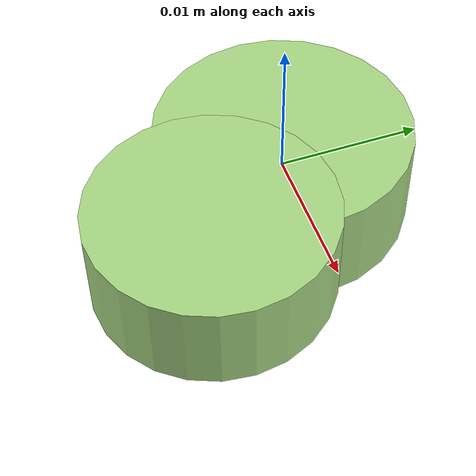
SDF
<?xml version="1.0" ?>
<!-- |    This document was autogenerated by xmacro from data/veggie_template/veggie_base.sdf.xacro  | -->
<!-- |    EDITING THIS FILE BY HAND IS NOT RECOMMENDED                                               | -->
<sdf version="1.8">
	<!-- Parameters -->
	<!-- Base -->
	<!-- Joint 0 -->
	<!-- Link 1 -->
	<!-- Joint 1 -->
	<!-- Link 2 -->
	<!-- Primitives -->
	<!-- All dimensions are half -->
	<!-- Object -->
	<model name="veggie">
		<!-- link0 -->
		<link name="link0">
			<inertial>
				<mass>0.0017097248459841078</mass>
				<inertia>
					<ixx>3.995658869500087e-08</ixx>
					<ixy>0</ixy>
					<ixz>0</ixz>
					<iyy>3.995658869500087e-08</iyy>
					<iyz>0</iyz>
					<izz>6.556633778071588e-08</izz>
				</inertia>
			</inertial>
			<visual name="link0_visual">
				<pose>0 0 0 0 0 0</pose>
				<geometry>
					<cylinder>
						<radius>0.008757746090323999</radius>
						<length>0.0070956246744241815</length>
					</cylinder>
				</geometry>
				<material>
					<ambient>0.659 0.839 0.514 1</ambient>
					<diffuse>0.659 0.839 0.514 1</diffuse>
					<specular>0 0 0 0</specular>
					<emissive>0 0 0 1</emissive>
				</material>
			</visual>
			<collision name="link0_collision">
				<pose>0 0 0 0 0 0 </pose>
				<geometry>
					<cylinder>
						<radius>0.008757746090323999</radius>
						<length>0.0070956246744241815</length>
					</cylinder>
				</geometry>
			</collision>
		</link>
		<!-- link1 -->
		<joint name="joint0" type="fixed">
			<pose relative_to="link0">0.005390833418946453 -0.006760738401328236 0.0004711224736868824 0.0 0.0 0.0</pose>
			<parent>link0</parent>
			<child>link1</child>
		</joint>
		<link name="link1">
			<pose relative_to="joint0">0 0 0 0 0 0</pose>
			<inertial>
				<mass>0.001440846556236978</mass>
				<inertia>
					<ixx>2.990227668845588e-08</ixx>
					<ixy>0</ixy>
					<ixz>0</ixz>
					<iyy>2.990227668845588e-08</iyy>
					<iyz>0</iyz>
					<izz>4.8792444696073366e-08</izz>
				</inertia>
			</inertial>
			<visual name="link1_visual">
				<pose>0 0 0 0 0 0</pose>
				<geometry>
					<cylinder>
						<radius>0.0082296699964841</radius>
						<length>0.006771766945973929</length>
					</cylinder>
				</geometry>
				<material>
					<ambient>0.659 0.839 0.514 1</ambient>
					<diffuse>0.659 0.839 0.514 1</diffuse>
					<specular>0 0 0 0</specular>
					<emissive>0 0 0 1</emissive>
				</material>
			</visual>
			<collision name="link1_collision">
				<pose>0 0 0 0 0 0 </pose>
				<geometry>
					<cylinder>
						<radius>0.0082296699964841</radius>
						<length>0.006771766945973929</length>
					</cylinder>
				</geometry>
			</collision>
		</link>
		<!-- link2 -->
	</model>
</sdf>
